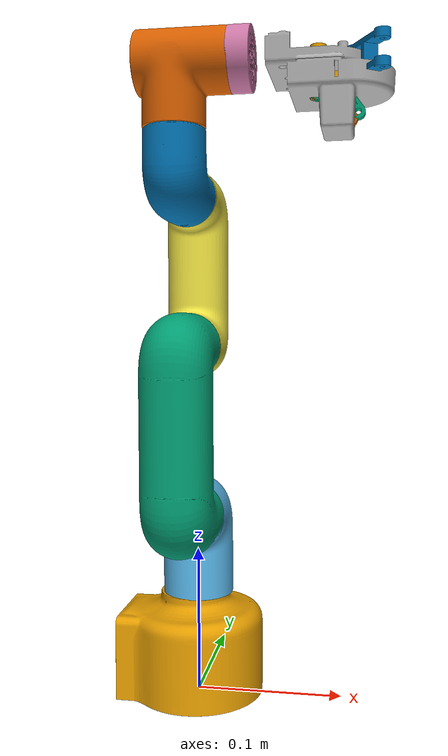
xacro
<?xml version="1.0"?>
<robot  xmlns:xacro="http://www.ros.org/wiki/xacro" name="mycobot" >
  <xacro:include filename="$(find mycobot_description)/urdf/common.xacro" />

  <link name="link1">
    <inertial>
      <origin xyz="0 0 0.035" rpy="0 0 0" />
      <mass value="10.0" />
      <xacro:cylinder_inertia m="10.0" r="0.05" h="0.07" />
    </inertial>
    <visual>
      <geometry>
       <mesh filename="package://mycobot_description/urdf/mycobot/mesh/link1.obj"/>
      </geometry>
      <origin xyz = "0.0 0 0 " rpy = " 0 0 -${pi/2}"/>
    </visual>
    <collision>
      <geometry>
       <mesh filename="package://mycobot_description/urdf/mycobot/mesh/link1.obj"/>
        </geometry>
        <origin xyz = "0.0 0 0 " rpy = " 0 0 -${pi/2}"/>
    </collision>
  </link>

  <link name="link2">
    <inertial>
      <origin xyz="0 0 0.060" rpy="0 0 0" />
      <mass value="0.2" />
      <xacro:cylinder_inertia m="0.2" r="0.05" h="0.08" />
    </inertial>
    <visual>
      <geometry>
       <mesh filename="package://mycobot_description/urdf/mycobot/mesh/link2.obj"/>
      </geometry>
      <origin xyz = "0.0 0 -0.06096 " rpy = " 0 0 -${pi/2}"/>
    </visual>
    <collision>
     <geometry>
       <mesh filename="package://mycobot_description/urdf/mycobot/mesh/link2.obj"/>
      </geometry>
      <origin xyz = "0.0 0 -0.06096 " rpy = " 0 0 -${pi/2}"/>
    </collision>
  </link>

  <link name="link3">
    <inertial>
      <origin xyz="0.01 0 0.06" rpy="0 0 0" />
      <mass value="0.4" />
      <xacro:cylinder_inertia m="0.4" r="0.05" h="0.155" />
    </inertial>
    <visual>
      <geometry>
       <mesh filename="package://mycobot_description/urdf/mycobot/mesh/link3.obj"/>
      </geometry>
    <origin xyz = "0.0 0 0.03256 " rpy = " 0 -${pi/2} 0"/>
    </visual>
    <collision>
      <geometry>
       <mesh filename="package://mycobot_description/urdf/mycobot/mesh/link3.obj"/>
      </geometry>
      <origin xyz = "0.0 0 0.03256 " rpy = " 0 -${pi/2} 0"/>
    </collision>
  </link>

  <link name="link4">
    <inertial>
      <origin xyz="-0.01 0 0.05" rpy="0 0 0" />
      <mass value="0.4" />
      <xacro:cylinder_inertia m="0.4" r="0.05" h="0.155" />
    </inertial>
    <visual>
      <geometry>
       <mesh filename="package://mycobot_description/urdf/mycobot/mesh/link4.obj"/>
      </geometry>
      <origin xyz = "0.0 0 0.03056 " rpy = " 0 -${pi/2} 0"/>
    </visual>
    <collision>
      <geometry>
       <mesh filename="package://mycobot_description/urdf/mycobot/mesh/link4.obj"/>
      </geometry>
      <origin xyz = "0.0 0 0.03056 " rpy = " 0 -${pi/2} 0"/>
    </collision>
  </link>

  <link name="link5">
    <inertial>
      <origin xyz="0 0 0.05" rpy="0 0 0" />
      <mass value="0.2" />
      <xacro:cylinder_inertia m="0.2" r="0.05" h="0.05" />
    </inertial>
    <visual>
      <geometry>
       <mesh filename="package://mycobot_description/urdf/mycobot/mesh/link5.obj"/>
      </geometry>
    <origin xyz = "0.0 0 -0.03356 " rpy = " -${pi/2} 0 0"/>
    </visual>
    <collision>
       <geometry>
       <mesh filename="package://mycobot_description/urdf/mycobot/mesh/link5.obj"/>
      </geometry>
      <origin xyz = "0.0 0 -0.03356 " rpy = " -${pi/2} 0 0"/>
    </collision>
  </link>

  <link name="link6">
    <inertial>
      <origin xyz="0 0 0.037" rpy="0 0 0" />
      <mass value="0.5" />
      <xacro:cylinder_inertia m="0.5" r="0.05" h="0.06" />
    </inertial>
    <visual>
      <geometry>
       <mesh filename="package://mycobot_description/urdf/mycobot/mesh/link6.obj"/>
      </geometry>
    <origin xyz = "0 0.00 -0.038 " rpy = " 0 0 0"/>
    </visual>
    <collision>
      <geometry>
       <mesh filename="package://mycobot_description/urdf/mycobot/mesh/link6.obj"/>
      </geometry>
    <origin xyz = "0 0.00 -0.038 " rpy = " 0 0 0"/>
    </collision>
  </link>

  <link name="link7">
    <inertial>
      <origin xyz="0 0.0025 0" rpy="${M_PI/2} 0 0" />
      <mass value="0.1" />
      <xacro:cylinder_inertia m="0.1" r="0.02" h="0.005" />
    </inertial>
    <visual>
      <geometry>
       <mesh filename="package://mycobot_description/urdf/mycobot/mesh/link7.obj"/>
      </geometry>
    <origin xyz = "0.0 0 -0.012 " rpy = " 0 0 0"/>
    </visual>
    <collision>
      <geometry>
       <mesh filename="package://mycobot_description/urdf/mycobot/mesh/link7.obj"/>
      </geometry>
    <origin xyz = "0.0 0 -0.012 " rpy = " 0 0 0"/>
    </collision>
  </link>

  <joint name="joint1" type="revolute">
    <axis xyz="0 0 1"/>
    <limit effort = "10.0" lower = "${-pi}" upper = "${pi}" velocity = "1.0"/>
    <parent link="link1"/>
    <child link="link2"/>
    <origin xyz= "0 0 0.13156" rpy = "0 0 0"/>
    <dynamics damping="1.0e-6" friction="2.0e-1" />
  </joint>

  <joint name="joint2" type="revolute">
    <axis xyz="0 0 1"/>
    <limit effort = "10.0" lower = "${-pi}" upper = "${pi}" velocity = "1.0"/>
    <parent link="link2"/>
    <child link="link3"/>
    <origin xyz= "0 0  0" rpy = "0 ${pi/2} -${pi/2}"/>
    <dynamics damping="1.0e-6" friction="2.0e-1" />
  </joint>

  <joint name="joint3" type="revolute">
    <axis xyz=" 0 0 1"/>
    <limit effort = "10.0" lower = "${-pi}" upper = "${pi}" velocity = "1.0"/>
    <parent link="link3"/>
    <child link="link4"/>
    <origin xyz= "-0.1104 0 0   " rpy = "0 0 0"/>
    <dynamics damping="1.0e-6" friction="2.0e-1" />
  </joint>

  <joint name="joint4" type="revolute">
    <axis xyz=" 0 0 1"/>
    <limit effort = "10.0" lower = "${-pi}" upper = "${pi}" velocity = "1.0"/>
    <parent link="link4"/>
    <child link="link5"/>
    <origin xyz= "-0.096 0 0.06462" rpy = "0 0 -${pi/2}"/>
    <dynamics damping="1.0e-6" friction="2.0e-1" />
  </joint>

  <joint name="joint5" type="revolute">
    <axis xyz="0 0 1"/>
    <limit effort = "10.0" lower = "${-pi}" upper = "${pi}" velocity = "1.0"/>
    <parent link="link5"/>
    <child link="link6"/>
    <origin xyz= "0 -0.07318 0" rpy = "${pi/2} -${pi/2} 0"/>
    <dynamics damping="1.0e-6" friction="2.0e-1" />
  </joint>

  <joint name="joint6" type="revolute">
    <axis xyz="0 0 1"/>
    <limit effort = "10.0" lower = "${-pi}" upper = "${pi}" velocity = "1.0"/>
    <parent link="link6"/>
    <child link="link7"/>
    <origin xyz= "0 0.0456 0" rpy = "-${pi/2} 0 0"/>
    <dynamics damping="1.0e-6" friction="2.0e-1" />
  </joint>

  <link name="gripper_base">
    <visual>
      <geometry>
       <mesh filename="package://mycobot_description/urdf/mycobot/gripper_base.obj"/>
      </geometry>
    <origin xyz = "0.0 0.008 -0.012 " rpy = " 0 0 0"/>
    </visual>
    <collision>
      <geometry>
       <mesh filename="package://mycobot_description/urdf/mycobot/gripper_base.obj"/>
      </geometry>
    <origin xyz = "0.0 0.008 -0.012 " rpy = " 0 0 0"/>
    </collision>
  </link>

  <link name="gripper_left1">
    <visual>
      <geometry>
       <mesh filename="package://mycobot_description/urdf/mycobot/gripper_left1.obj"/>
      </geometry>
    <origin xyz = "0.039 -0.0133 -0.012 " rpy = " 0 0 0"/>
    </visual>
    <collision>
      <geometry>
       <mesh filename="package://mycobot_description/urdf/mycobot/gripper_left1.obj"/>
      </geometry>
        <origin xyz = "0.039 -0.0133 -0.012 " rpy = " 0 0 0"/>
    </collision>
  </link>

  <link name="gripper_left2">
    <visual>
      <geometry>
       <mesh filename="package://mycobot_description/urdf/mycobot/gripper_left2.obj"/>
      </geometry>
    <origin xyz = "0.005 -0.0195 -0.012 " rpy = " 0 0 0"/>
    </visual>
    <collision>
      <geometry>
       <mesh filename="package://mycobot_description/urdf/mycobot/gripper_left2.obj"/>
      </geometry>
        <origin xyz = "0.005 -0.0195 -0.012 " rpy = " 0 0 0"/>
    </collision>
  </link>

  <link name="gripper_left3">
    <visual>
      <geometry>
       <mesh filename="package://mycobot_description/urdf/mycobot/gripper_left3.obj"/>
      </geometry>
    <origin xyz = "0.012 0.0025 -0.012 " rpy = " 0 0 0"/>

    </visual>
    <collision>
      <geometry>
       <mesh filename="package://mycobot_description/urdf/mycobot/gripper_left3.obj"/>
      </geometry>
    <origin xyz = "0.0 0 -0.012 " rpy = " 0 0 0"/>
    </collision>
  </link>

  <link name="gripper_right1">
    <visual>
      <geometry>
       <mesh filename="package://mycobot_description/urdf/mycobot/gripper_right1.obj"/>
      </geometry>
    <origin xyz = "-0.039 -0.0133 -0.012 " rpy = " 0 0 0"/>
    </visual>
    <collision>
      <geometry>
       <mesh filename="package://mycobot_description/urdf/mycobot/gripper_right1.obj"/>
      </geometry>
        <origin xyz = "-0.039 -0.0133 -0.012 " rpy = " 0 0 0"/>
    </collision>
  </link>

  <link name="gripper_right2">
    <visual>
      <geometry>
       <mesh filename="package://mycobot_description/urdf/mycobot/gripper_right2.obj"/>
      </geometry>
    <origin xyz = "-0.005 -0.0195 -0.012 " rpy = " 0 0 0"/>
    </visual>
    <collision>
      <geometry>
       <mesh filename="package://mycobot_description/urdf/mycobot/gripper_right2.obj"/>
      </geometry>
        <origin xyz = "-0.005 -0.0195 -0.012 " rpy = " 0 0 0"/>
    </collision>
  </link>

  <link name="gripper_right3">
    <visual>
      <geometry>
       <mesh filename="package://mycobot_description/urdf/mycobot/gripper_right3.obj"/>
      </geometry>
    <origin xyz = "-0.012 0.0025 -0.012 " rpy = " 0 0 0"/>
    </visual>
    <collision>
      <geometry>
       <mesh filename="package://mycobot_description/urdf/mycobot/gripper_right3.obj"/>
      </geometry>
    <origin xyz = "-0.012 0.0025 -0.012" rpy = " 0 0 0"/>
    </collision>
  </link>

  <joint name="link7_to_gripper_base" type="fixed">
    <parent link="link7"/>
    <child link="gripper_base"/>
    <origin xyz= "0 0 0.034" rpy = "1.579 0 0"/>
  </joint>

<joint name="gripper_base_to_gripper_left3" type="revolute">
    <axis xyz="0 0 1"/>
    <limit effort = "1000.0" lower = "-0.7" upper = "0.15" velocity = "0"/>
    <parent link="gripper_base"/>
    <child link="gripper_left3"/>
    <origin xyz= "-0.012 0.005 0" rpy = "0 0 0"/>
  </joint>

  <joint name="gripper_base_to_gripper_left2" type="revolute">
    <axis xyz="0 0 1"/>
    <limit effort = "1000.0" lower = "-0.8" upper = "0.5" velocity = "0"/>
    <parent link="gripper_base"/>
    <child link="gripper_left2"/>
    <origin xyz= "-0.005 0.027 0" rpy = "0 0 0"/>
  </joint>

  <joint name="gripper_left3_to_gripper_left1" type="revolute">
    <axis xyz="0 0 1"/>
    <limit effort = "1000.0" lower = "-0.5" upper = "0.5" velocity = "0"/>
    <parent link="gripper_left3"/>
    <child link="gripper_left1"/>
    <origin xyz= "-0.027 0.016 0" rpy = "0 0 0"/>
  </joint>

  <joint name="gripper_base_to_gripper_right3" type="revolute">
    <axis xyz="0 0 1"/>
    <limit effort = "1000.0" lower = "-0.15" upper = "0.7" velocity = "0"/>
    <parent link="gripper_base"/>
    <child link="gripper_right3"/>
    <origin xyz= "0.012 0.005 0" rpy = "0 0 0"/>
  </joint>

  <joint name="gripper_base_to_gripper_right2" type="revolute">
    <axis xyz="0 0 1"/>
    <limit effort = "1000.0" lower = "-0.5" upper = "0.8" velocity = "0"/>
    <parent link="gripper_base"/>
    <child link="gripper_right2"/>
    <origin xyz= "0.005 0.027 0" rpy = "0 0 0"/>
  </joint>

  <joint name="gripper_right3_to_gripper_right1" type="revolute">
    <axis xyz="0 0 1"/>
    <limit effort = "1000.0" lower = "-0.5" upper = "0.5" velocity = "0"/>
    <parent link="gripper_right3"/>
    <child link="gripper_right1"/>
    <origin xyz= "0.027 0.016 0" rpy = "0 0 0"/>
  </joint>

  <transmission name="joint1_trans">
    <provideFeedback>true</provideFeedback>
    <implicitSpringDamper>0</implicitSpringDamper>
    <motorTorqueConstant>0.418</motorTorqueConstant>
    <type>transmission_interface/SimpleTransmission</type>
    <joint name="joint1">
      <hardwareInterface>hardware_interface/PositionJointInterface</hardwareInterface>
    </joint>
    <actuator name="joint1_motor">
      <hardwareInterface>hardware_interface/PositionJointInterface</hardwareInterface>
      <mechanicalReduction>1</mechanicalReduction>
    </actuator>
  </transmission>
  <transmission name="joint2_trans">
    <provideFeedback>true</provideFeedback>
    <implicitSpringDamper>0</implicitSpringDamper>
    <motorTorqueConstant>0.418</motorTorqueConstant>
    <type>transmission_interface/SimpleTransmission</type>
    <joint name="joint2">
      <hardwareInterface>hardware_interface/PositionJointInterface</hardwareInterface>
    </joint>
    <actuator name="joint2_motor">
      <hardwareInterface>hardware_interface/PositionJointInterface</hardwareInterface>
      <mechanicalReduction>1</mechanicalReduction>
    </actuator>
  </transmission>
  <transmission name="joint3_trans">
    <provideFeedback>true</provideFeedback>
    <implicitSpringDamper>0</implicitSpringDamper>
    <motorTorqueConstant>0.418</motorTorqueConstant>
    <type>transmission_interface/SimpleTransmission</type>
    <joint name="joint3">
      <hardwareInterface>hardware_interface/PositionJointInterface</hardwareInterface>
    </joint>
    <actuator name="joint3_motor">
      <hardwareInterface>hardware_interface/PositionJointInterface</hardwareInterface>
      <mechanicalReduction>1</mechanicalReduction>
    </actuator>
  </transmission>
  <transmission name="joint4_trans">
    <provideFeedback>true</provideFeedback>
    <implicitSpringDamper>0</implicitSpringDamper>
    <motorTorqueConstant>0.418</motorTorqueConstant>
    <type>transmission_interface/SimpleTransmission</type>
    <joint name="joint4">
      <hardwareInterface>hardware_interface/PositionJointInterface</hardwareInterface>
    </joint>
    <actuator name="joint4_motor">
      <hardwareInterface>hardware_interface/PositionJointInterface</hardwareInterface>
      <mechanicalReduction>1</mechanicalReduction>
    </actuator>
  </transmission>
  <transmission name="joint5_trans">
    <provideFeedback>true</provideFeedback>
    <implicitSpringDamper>0</implicitSpringDamper>
    <motorTorqueConstant>0.418</motorTorqueConstant>
    <type>transmission_interface/SimpleTransmission</type>
    <joint name="joint5">
      <hardwareInterface>hardware_interface/PositionJointInterface</hardwareInterface>
    </joint>
    <actuator name="joint5_motor">
      <hardwareInterface>hardware_interface/PositionJointInterface</hardwareInterface>
      <mechanicalReduction>1</mechanicalReduction>
    </actuator>
  </transmission>
  <transmission name="joint6_trans">
    <provideFeedback>true</provideFeedback>
    <implicitSpringDamper>0</implicitSpringDamper>
    <motorTorqueConstant>0.418</motorTorqueConstant>
    <type>transmission_interface/SimpleTransmission</type>
    <joint name="joint6">
      <hardwareInterface>hardware_interface/PositionJointInterface</hardwareInterface>
    </joint>
    <actuator name="joint6_motor">
      <hardwareInterface>hardware_interface/PositionJointInterface</hardwareInterface>
      <mechanicalReduction>1</mechanicalReduction>
    </actuator>
  </transmission>
  <transmission name="link7_to_gripper_base_trans">
    <provideFeedback>true</provideFeedback>
    <type>transmission_interface/SimpleTransmission</type>
    <joint name="link7_to_gripper_base">
      <hardwareInterface>hardware_interface/PositionJointInterface</hardwareInterface>
    </joint>
    <actuator name="link7_to_gripper_base_actuator">
      <hardwareInterface>hardware_interface/PositionJointInterface</hardwareInterface>
      <mechanicalReduction>1</mechanicalReduction>
    </actuator>
  </transmission>

  <transmission name="gripper_controller_trans">
    <provideFeedback>true</provideFeedback>
    <type>transmission_interface/SimpleTransmission</type>
    <joint name="gripper_controller">
      <hardwareInterface>hardware_interface/PositionJointInterface</hardwareInterface>
    </joint>
    <actuator name="gripper_controller_actuator">
      <hardwareInterface>hardware_interface/PositionJointInterface</hardwareInterface>
      <mechanicalReduction>1</mechanicalReduction>
    </actuator>
  </transmission>

  <transmission name="gripper_base_to_gripper_left2_trans">
    <provideFeedback>true</provideFeedback>
    <type>transmission_interface/SimpleTransmission</type>
    <joint name="gripper_base_to_gripper_left2">
      <hardwareInterface>hardware_interface/PositionJointInterface</hardwareInterface>
    </joint>
    <actuator name="gripper_base_to_gripper_left2_actuator">
      <hardwareInterface>hardware_interface/PositionJointInterface</hardwareInterface>
      <mechanicalReduction>1</mechanicalReduction>
    </actuator>
  </transmission>

  <!-- and so on for the remaining joints -->
  <transmission name="gripper_left3_to_gripper_left1_trans">
    <provideFeedback>true</provideFeedback>
    <type>transmission_interface/SimpleTransmission</type>
    <joint name="gripper_left3_to_gripper_left1">
      <hardwareInterface>hardware_interface/PositionJointInterface</hardwareInterface>
    </joint>
    <actuator name="gripper_left3_to_gripper_left1_actuator">
      <hardwareInterface>hardware_interface/PositionJointInterface</hardwareInterface>
      <mechanicalReduction>1</mechanicalReduction>
    </actuator>
  </transmission>

  <transmission name="gripper_base_to_gripper_right3_trans">
    <provideFeedback>true</provideFeedback>
    <type>transmission_interface/SimpleTransmission</type>
    <joint name="gripper_base_to_gripper_right3">
      <hardwareInterface>hardware_interface/PositionJointInterface</hardwareInterface>
    </joint>
    <actuator name="gripper_base_to_gripper_right3_actuator">
      <hardwareInterface>hardware_interface/PositionJointInterface</hardwareInterface>
      <mechanicalReduction>1</mechanicalReduction>
    </actuator>
  </transmission>

  <transmission name="gripper_base_to_gripper_right2_trans">
    <provideFeedback>true</provideFeedback>
    <type>transmission_interface/SimpleTransmission</type>
    <joint name="gripper_base_to_gripper_right2">
      <hardwareInterface>hardware_interface/PositionJointInterface</hardwareInterface>
    </joint>
    <actuator name="gripper_base_to_gripper_right2_actuator">
      <hardwareInterface>hardware_interface/PositionJointInterface</hardwareInterface>
      <mechanicalReduction>1</mechanicalReduction>
    </actuator>
  </transmission>

  <transmission name="gripper_right3_to_gripper_right1_trans">
    <provideFeedback>true</provideFeedback>
    <type>transmission_interface/SimpleTransmission</type>
    <joint name="gripper_right3_to_gripper_right1">
      <hardwareInterface>hardware_interface/PositionJointInterface</hardwareInterface>
    </joint>
    <actuator name="gripper_right3_to_gripper_right1_actuator">
      <hardwareInterface>hardware_interface/PositionJointInterface</hardwareInterface>
      <mechanicalReduction>1</mechanicalReduction>
    </actuator>
  </transmission>

</robot>
